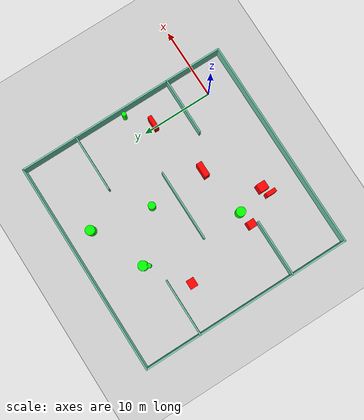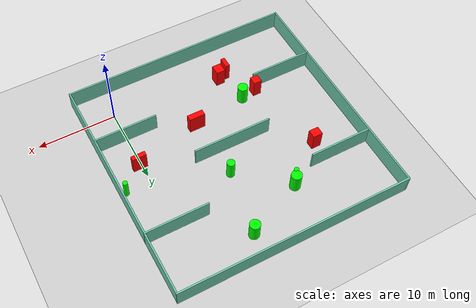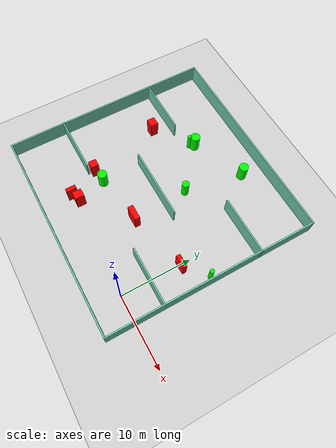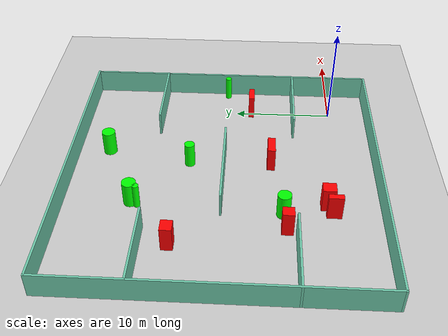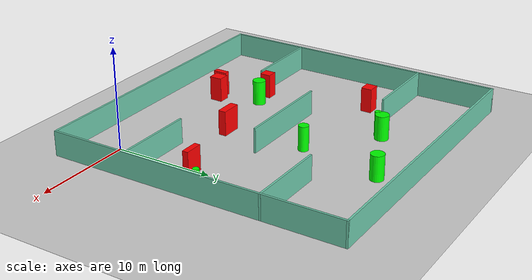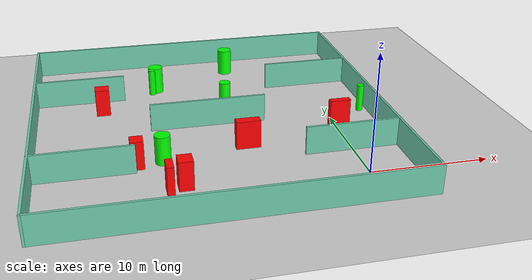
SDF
<sdf version="1.7">
 <world name="default">
  <light name="sun" type="directional">
   <pose>0 0 10 0 -0 0</pose>
   <diffuse>0.8 0.8 0.8 1</diffuse>
   <specular>0.2 0.2 0.2 1</specular>
   <attenuation>
    <range>1000</range>
    <constant>0.9</constant>
    <linear>0.01</linear>
    <quadratic>0.001</quadratic>
   </attenuation>
   <direction>-0.5 0.1 -0.9</direction>
   <spot><inner_angle>0</inner_angle><outer_angle>0</outer_angle><falloff>0</falloff></spot>
  </light>
  <model name="ground_plane">
   <static>1</static>
   <link name="link">
    <collision name="collision">
     <geometry><plane><normal>0 0 1</normal><size>100 100</size></plane></geometry>
     <surface>
      <contact><collide_bitmask>65535</collide_bitmask></contact>
      <friction><ode><mu>100</mu><mu2>50</mu2></ode></friction>
     </surface>
    </collision>
    <visual name="visual">
     <cast_shadows>0</cast_shadows>
     <geometry><plane><normal>0 0 1</normal><size>100 100</size></plane></geometry>
     <material>
      <script><uri>file://media/materials/scripts/gazebo.material</uri><name>Gazebo/Grey</name></script>
     </material>
    </visual>
   </link>
  </model>
  <gravity>0 0 -9.8</gravity>
  <magnetic_field>6e-06 2.3e-05 -4.2e-05</magnetic_field>
  <atmosphere type="adiabatic"/>
  <physics type="ode">
   <max_step_size>0.001</max_step_size>
   <real_time_factor>1</real_time_factor>
   <real_time_update_rate>1000</real_time_update_rate>
  </physics>
  <scene><ambient>0.4 0.4 0.4 1</ambient><background>0.7 0.7 0.7 1</background><shadows>1</shadows></scene>
  <spherical_coordinates>
   <surface_model>EARTH_WGS84</surface_model>
   <latitude_deg>0</latitude_deg>
   <longitude_deg>0</longitude_deg>
   <elevation>0</elevation>
   <heading_deg>0</heading_deg>
  </spherical_coordinates>
  <model name="my_base_walls">
   <link name="Wall_10">
    <collision name="Wall_10_Collision">
     <geometry><box><size>8.2 0.2 2.5</size></box></geometry>
     <pose>0 0 1.25 0 -0 0</pose>
    </collision>
    <visual name="Wall_10_Visual">
     <pose>0 0 1.25 0 -0 0</pose>
     <geometry><box><size>8.2 0.2 2.5</size></box></geometry>
     <material>
      <script><uri>file://media/materials/scripts/gazebo.material</uri><name>Gazebo/Grey</name></script>
      <ambient>0.435294 0.796078 0.67451 1</ambient>
     </material>
     <meta><layer>0</layer></meta>
    </visual>
    <pose>-11 -7 0 0 -0 0</pose>
   </link>
   <link name="Wall_12">
    <collision name="Wall_12_Collision">
     <geometry><box><size>8.2 0.2 2.5</size></box></geometry>
     <pose>0 0 1.25 0 -0 0</pose>
    </collision>
    <visual name="Wall_12_Visual">
     <pose>0 0 1.25 0 -0 0</pose>
     <geometry><box><size>8.2 0.2 2.5</size></box></geometry>
     <material>
      <script><uri>file://media/materials/scripts/gazebo.material</uri><name>Gazebo/Grey</name></script>
      <ambient>0.435294 0.796078 0.67451 1</ambient>
     </material>
     <meta><layer>0</layer></meta>
    </visual>
    <pose>-11 7 0 0 -0 0</pose>
   </link>
   <link name="Wall_14">
    <collision name="Wall_14_Collision">
     <geometry><box><size>8.2 0.2 2.5</size></box></geometry>
     <pose>0 0 1.25 0 -0 0</pose>
    </collision>
    <visual name="Wall_14_Visual">
     <pose>0 0 1.25 0 -0 0</pose>
     <geometry><box><size>8.2 0.2 2.5</size></box></geometry>
     <material>
      <script><uri>file://media/materials/scripts/gazebo.material</uri><name>Gazebo/Grey</name></script>
      <ambient>0.435294 0.796078 0.67451 1</ambient>
     </material>
     <meta><layer>0</layer></meta>
    </visual>
    <pose>11 7 0 0 -0 3.14159</pose>
   </link>
   <link name="Wall_16">
    <collision name="Wall_16_Collision">
     <geometry><box><size>10.2 0.2 2.5</size></box></geometry>
     <pose>0 0 1.25 0 -0 0</pose>
    </collision>
    <visual name="Wall_16_Visual">
     <pose>0 0 1.25 0 -0 0</pose>
     <geometry><box><size>10.2 0.2 2.5</size></box></geometry>
     <material>
      <script><uri>file://media/materials/scripts/gazebo.material</uri><name>Gazebo/Grey</name></script>
      <ambient>0.435294 0.796078 0.67451 1</ambient>
     </material>
     <meta><layer>0</layer></meta>
    </visual>
    <pose>0 0 0 0 -0 3.14159</pose>
   </link>
   <link name="Wall_2">
    <collision name="Wall_2_Collision">
     <geometry><box><size>30.2 0.2 2.5</size></box></geometry>
     <pose>0 0 1.25 0 -0 0</pose>
    </collision>
    <visual name="Wall_2_Visual">
     <pose>0 0 1.25 0 -0 0</pose>
     <geometry><box><size>30.2 0.2 2.5</size></box></geometry>
     <material>
      <script><uri>file://media/materials/scripts/gazebo.material</uri><name>Gazebo/Grey</name></script>
      <ambient>0.435294 0.796078 0.67451 1</ambient>
     </material>
     <meta><layer>0</layer></meta>
    </visual>
    <pose>0 -15 0 0 -0 3.14159</pose>
   </link>
   <link name="Wall_3">
    <collision name="Wall_3_Collision">
     <geometry><box><size>30.2 0.2 2.5</size></box></geometry>
     <pose>0 0 1.25 0 -0 0</pose>
    </collision>
    <visual name="Wall_3_Visual">
     <pose>0 0 1.25 0 -0 0</pose>
     <geometry><box><size>30.2 0.2 2.5</size></box></geometry>
     <material>
      <script><uri>file://media/materials/scripts/gazebo.material</uri><name>Gazebo/Grey</name></script>
      <ambient>0.435294 0.796078 0.67451 1</ambient>
     </material>
     <meta><layer>0</layer></meta>
    </visual>
    <pose>-15 0 0 0 -0 1.5708</pose>
   </link>
   <link name="Wall_4">
    <collision name="Wall_4_Collision">
     <geometry><box><size>30.2 0.2 2.5</size></box></geometry>
     <pose>0 0 1.25 0 -0 0</pose>
    </collision>
    <visual name="Wall_4_Visual">
     <pose>0 0 1.25 0 -0 0</pose>
     <geometry><box><size>30.2 0.2 2.5</size></box></geometry>
     <material>
      <script><uri>file://media/materials/scripts/gazebo.material</uri><name>Gazebo/Grey</name></script>
      <ambient>0.435294 0.796078 0.67451 1</ambient>
     </material>
     <meta><layer>0</layer></meta>
    </visual>
    <pose>0 15 0 0 -0 0</pose>
   </link>
   <link name="Wall_6">
    <collision name="Wall_6_Collision">
     <geometry><box><size>30.2 0.2 2.5</size></box></geometry>
     <pose>0 0 1.25 0 -0 0</pose>
    </collision>
    <visual name="Wall_6_Visual">
     <pose>0 0 1.25 0 -0 0</pose>
     <geometry><box><size>30.2 0.2 2.5</size></box></geometry>
     <material>
      <script><uri>file://media/materials/scripts/gazebo.material</uri><name>Gazebo/Grey</name></script>
      <ambient>0.435294 0.796078 0.67451 1</ambient>
     </material>
     <meta><layer>0</layer></meta>
    </visual>
    <pose>15 0 0 0 -0 1.5708</pose>
   </link>
   <link name="Wall_8">
    <collision name="Wall_8_Collision">
     <geometry><box><size>8.2 0.2 2.5</size></box></geometry>
     <pose>0 0 1.25 0 -0 0</pose>
    </collision>
    <visual name="Wall_8_Visual">
     <pose>0 0 1.25 0 -0 0</pose>
     <geometry><box><size>8.2 0.2 2.5</size></box></geometry>
     <material>
      <script><uri>file://media/materials/scripts/gazebo.material</uri><name>Gazebo/Grey</name></script>
      <ambient>0.435294 0.796078 0.67451 1</ambient>
     </material>
     <meta><layer>0</layer></meta>
    </visual>
    <pose>11 -7 0 0 -0 3.14159</pose>
   </link>
   <static>1</static>
   <pose>-11 11 0 0 -0 0</pose>
  </model>
  <model name="cylinder1">
   <static>1</static>
   <link name="link">
    <inertial>
     <mass>1</mass>
     <inertia><ixx>0.5</ixx><ixy>0</ixy><ixz>0</ixz><iyy>0.5</iyy><iyz>0</iyz><izz>1</izz></inertia>
    </inertial>
    <collision name="collision">
     <geometry><cylinder><radius>0.5061232607621333</radius><length>2.5</length></cylinder></geometry>
    </collision>
    <visual name="visual">
     <geometry><cylinder><radius>0.5061232607621333</radius><length>2.5</length></cylinder></geometry>
     <material>
      <ambient>0 1 0 1</ambient>
      <diffuse>0 1 0 1</diffuse>
      <specular>0.1 0.1 0.1 1</specular>
      <emissive>0 0 0 0</emissive>
     </material>
    </visual>
   </link>
   <pose>-8.850641896081576 14.440254306788834 1.25 0 0 0</pose>
  </model>
  <model name="cylinder2">
   <static>1</static>
   <link name="link">
    <inertial>
     <mass>1</mass>
     <inertia><ixx>0.5</ixx><ixy>0</ixy><ixz>0</ixz><iyy>0.5</iyy><iyz>0</iyz><izz>1</izz></inertia>
    </inertial>
    <collision name="collision">
     <geometry><cylinder><radius>0.3028723159970245</radius><length>2.5</length></cylinder></geometry>
    </collision>
    <visual name="visual">
     <geometry><cylinder><radius>0.3028723159970245</radius><length>2.5</length></cylinder></geometry>
     <material>
      <ambient>0 1 0 1</ambient>
      <diffuse>0 1 0 1</diffuse>
      <specular>0.1 0.1 0.1 1</specular>
      <emissive>0 0 0 0</emissive>
     </material>
    </visual>
   </link>
   <pose>3.2371998756638085 11.113849059924657 1.25 0 0 0</pose>
  </model>
  <model name="cylinder3">
   <static>1</static>
   <link name="link">
    <inertial>
     <mass>1</mass>
     <inertia><ixx>0.5</ixx><ixy>0</ixy><ixz>0</ixz><iyy>0.5</iyy><iyz>0</iyz><izz>1</izz></inertia>
    </inertial>
    <collision name="collision">
     <geometry><cylinder><radius>0.6613359919617179</radius><length>2.5</length></cylinder></geometry>
    </collision>
    <visual name="visual">
     <geometry><cylinder><radius>0.6613359919617179</radius><length>2.5</length></cylinder></geometry>
     <material>
      <ambient>0 1 0 1</ambient>
      <diffuse>0 1 0 1</diffuse>
      <specular>0.1 0.1 0.1 1</specular>
      <emissive>0 0 0 0</emissive>
     </material>
    </visual>
   </link>
   <pose>-7.2829913959167385 22.805079649684153 1.25 0 0 0</pose>
  </model>
  <model name="cylinder4">
   <static>1</static>
   <link name="link">
    <inertial>
     <mass>1</mass>
     <inertia><ixx>0.5</ixx><ixy>0</ixy><ixz>0</ixz><iyy>0.5</iyy><iyz>0</iyz><izz>1</izz></inertia>
    </inertial>
    <collision name="collision">
     <geometry><cylinder><radius>0.6530643018339702</radius><length>2.5</length></cylinder></geometry>
    </collision>
    <visual name="visual">
     <geometry><cylinder><radius>0.6530643018339702</radius><length>2.5</length></cylinder></geometry>
     <material>
      <ambient>0 1 0 1</ambient>
      <diffuse>0 1 0 1</diffuse>
      <specular>0.1 0.1 0.1 1</specular>
      <emissive>0 0 0 0</emissive>
     </material>
    </visual>
   </link>
   <pose>-15.68749226991958 5.187091222277154 1.25 0 0 0</pose>
  </model>
  <model name="cylinder5">
   <static>1</static>
   <link name="link">
    <inertial>
     <mass>1</mass>
     <inertia><ixx>0.5</ixx><ixy>0</ixy><ixz>0</ixz><iyy>0.5</iyy><iyz>0</iyz><izz>1</izz></inertia>
    </inertial>
    <collision name="collision">
     <geometry><cylinder><radius>0.6763269315540102</radius><length>2.5</length></cylinder></geometry>
    </collision>
    <visual name="visual">
     <geometry><cylinder><radius>0.6763269315540102</radius><length>2.5</length></cylinder></geometry>
     <material>
      <ambient>0 1 0 1</ambient>
      <diffuse>0 1 0 1</diffuse>
      <specular>0.1 0.1 0.1 1</specular>
      <emissive>0 0 0 0</emissive>
     </material>
    </visual>
   </link>
   <pose>-14.758018318093443 19.514899427633015 1.25 0 0 0</pose>
  </model>
  <model name="cylinder6">
   <static>1</static>
   <link name="link">
    <inertial>
     <mass>1</mass>
     <inertia><ixx>0.5</ixx><ixy>0</ixy><ixz>0</ixz><iyy>0.5</iyy><iyz>0</iyz><izz>1</izz></inertia>
    </inertial>
    <collision name="collision">
     <geometry><cylinder><radius>0.30934537365721687</radius><length>2.5</length></cylinder></geometry>
    </collision>
    <visual name="visual">
     <geometry><cylinder><radius>0.30934537365721687</radius><length>2.5</length></cylinder></geometry>
     <material>
      <ambient>0 1 0 1</ambient>
      <diffuse>0 1 0 1</diffuse>
      <specular>0.1 0.1 0.1 1</specular>
      <emissive>0 0 0 0</emissive>
     </material>
    </visual>
   </link>
   <pose>-15.164675533137363 18.85515110903257 1.25 0 0 0</pose>
  </model>
  <model name="box1">
   <static>1</static>
   <link name="link">
    <inertial>
     <mass>1</mass>
     <inertia><ixx>0.083</ixx><ixy>0</ixy><ixz>0</ixz><iyy>0.083</iyy><iyz>0</iyz><izz>0.083</izz></inertia>
    </inertial>
    <collision name="collision">
     <geometry><box><size>0.5687992428159779 1.4088733994971554 2.5</size></box></geometry>
    </collision>
    <visual name="visual">
     <geometry><box><size>0.5687992428159779 1.4088733994971554 2.5</size></box></geometry>
     <material>
      <ambient>1 0 0 1</ambient>
      <diffuse>1 0 0 1</diffuse>
      <specular>0.1 0.1 0.1 1</specular>
      <emissive>0 0 0 0</emissive>
     </material>
    </visual>
    <sensor name="my_contact" type="contact">
     <contact><collision>box_collision</collision><topic>__default_topic__</topic></contact>
    </sensor>
   </link>
   <pose>-15.67662614124546 0.5403057726120513 1.25 0 0 0</pose>
  </model>
  <model name="box2">
   <static>1</static>
   <link name="link">
    <inertial>
     <mass>1</mass>
     <inertia><ixx>0.083</ixx><ixy>0</ixy><ixz>0</ixz><iyy>0.083</iyy><iyz>0</iyz><izz>0.083</izz></inertia>
    </inertial>
    <collision name="collision">
     <geometry><box><size>2.061811497118547 0.7724774350073443 2.5</size></box></geometry>
    </collision>
    <visual name="visual">
     <geometry><box><size>2.061811497118547 0.7724774350073443 2.5</size></box></geometry>
     <material>
      <ambient>1 0 0 1</ambient>
      <diffuse>1 0 0 1</diffuse>
      <specular>0.1 0.1 0.1 1</specular>
      <emissive>0 0 0 0</emissive>
     </material>
    </visual>
    <sensor name="my_contact" type="contact">
     <contact><collision>box_collision</collision><topic>__default_topic__</topic></contact>
    </sensor>
   </link>
   <pose>-8.453572563835507 6.325210491588463 1.25 0 0 0</pose>
  </model>
  <model name="box3">
   <static>1</static>
   <link name="link">
    <inertial>
     <mass>1</mass>
     <inertia><ixx>0.083</ixx><ixy>0</ixy><ixz>0</ixz><iyy>0.083</iyy><iyz>0</iyz><izz>0.083</izz></inertia>
    </inertial>
    <collision name="collision">
     <geometry><box><size>1.0548229843968882 1.092975019956818 2.5</size></box></geometry>
    </collision>
    <visual name="visual">
     <geometry><box><size>1.0548229843968882 1.092975019956818 2.5</size></box></geometry>
     <material>
      <ambient>1 0 0 1</ambient>
      <diffuse>1 0 0 1</diffuse>
      <specular>0.1 0.1 0.1 1</specular>
      <emissive>0 0 0 0</emissive>
     </material>
    </visual>
    <sensor name="my_contact" type="contact">
     <contact><collision>box_collision</collision><topic>__default_topic__</topic></contact>
    </sensor>
   </link>
   <pose>-17.760743346730557 4.8745612885837115 1.25 0 0 0</pose>
  </model>
  <model name="box4">
   <static>1</static>
   <link name="link">
    <inertial>
     <mass>1</mass>
     <inertia><ixx>0.083</ixx><ixy>0</ixy><ixz>0</ixz><iyy>0.083</iyy><iyz>0</iyz><izz>0.083</izz></inertia>
    </inertial>
    <collision name="collision">
     <geometry><box><size>1.2429876684262418 1.0939281007330044 2.5</size></box></geometry>
    </collision>
    <visual name="visual">
     <geometry><box><size>1.2429876684262418 1.0939281007330044 2.5</size></box></geometry>
     <material>
      <ambient>1 0 0 1</ambient>
      <diffuse>1 0 0 1</diffuse>
      <specular>0.1 0.1 0.1 1</specular>
      <emissive>0 0 0 0</emissive>
     </material>
    </visual>
    <sensor name="my_contact" type="contact">
     <contact><collision>box_collision</collision><topic>__default_topic__</topic></contact>
    </sensor>
   </link>
   <pose>-20.019023488263052 15.419391352003956 1.25 0 0 0</pose>
  </model>
  <model name="box5">
   <static>1</static>
   <link name="link">
    <inertial>
     <mass>1</mass>
     <inertia><ixx>0.083</ixx><ixy>0</ixy><ixz>0</ixz><iyy>0.083</iyy><iyz>0</iyz><izz>0.083</izz></inertia>
    </inertial>
    <collision name="collision">
     <geometry><box><size>1.1660971761460242 1.2766982857944469 2.5</size></box></geometry>
    </collision>
    <visual name="visual">
     <geometry><box><size>1.1660971761460242 1.2766982857944469 2.5</size></box></geometry>
     <material>
      <ambient>1 0 0 1</ambient>
      <diffuse>1 0 0 1</diffuse>
      <specular>0.1 0.1 0.1 1</specular>
      <emissive>0 0 0 0</emissive>
     </material>
    </visual>
    <sensor name="my_contact" type="contact">
     <contact><collision>box_collision</collision><topic>__default_topic__</topic></contact>
    </sensor>
   </link>
   <pose>-14.449746240858587 1.0584926511165982 1.25 0 0 0</pose>
  </model>
  <model name="box6">
   <static>1</static>
   <link name="link">
    <inertial>
     <mass>1</mass>
     <inertia><ixx>0.083</ixx><ixy>0</ixy><ixz>0</ixz><iyy>0.083</iyy><iyz>0</iyz><izz>0.083</izz></inertia>
    </inertial>
    <collision name="collision">
     <geometry><box><size>1.8211589070066998 0.5825625929406264 2.5</size></box></geometry>
    </collision>
    <visual name="visual">
     <geometry><box><size>1.8211589070066998 0.5825625929406264 2.5</size></box></geometry>
     <material>
      <ambient>1 0 0 1</ambient>
      <diffuse>1 0 0 1</diffuse>
      <specular>0.1 0.1 0.1 1</specular>
      <emissive>0 0 0 0</emissive>
     </material>
    </visual>
    <sensor name="my_contact" type="contact">
     <contact><collision>box_collision</collision><topic>__default_topic__</topic></contact>
    </sensor>
   </link>
   <pose>0.3015296788746369 8.455383639162903 1.25 0 0 0</pose>
  </model>
 </world>
</sdf>
